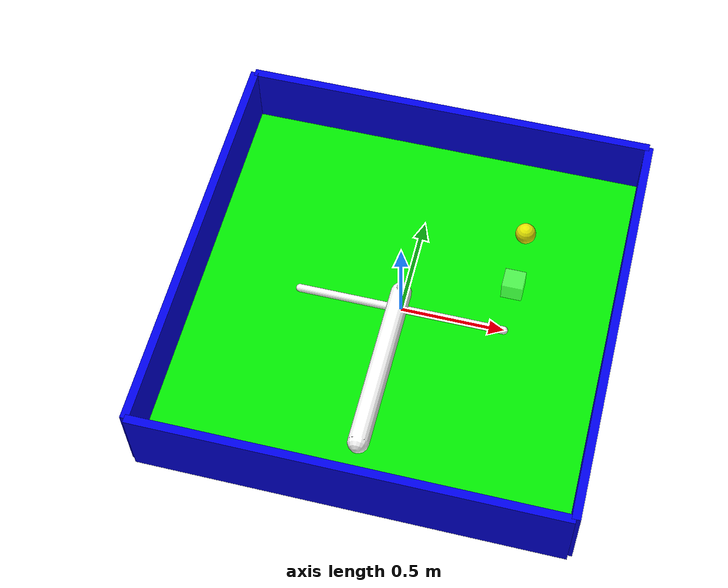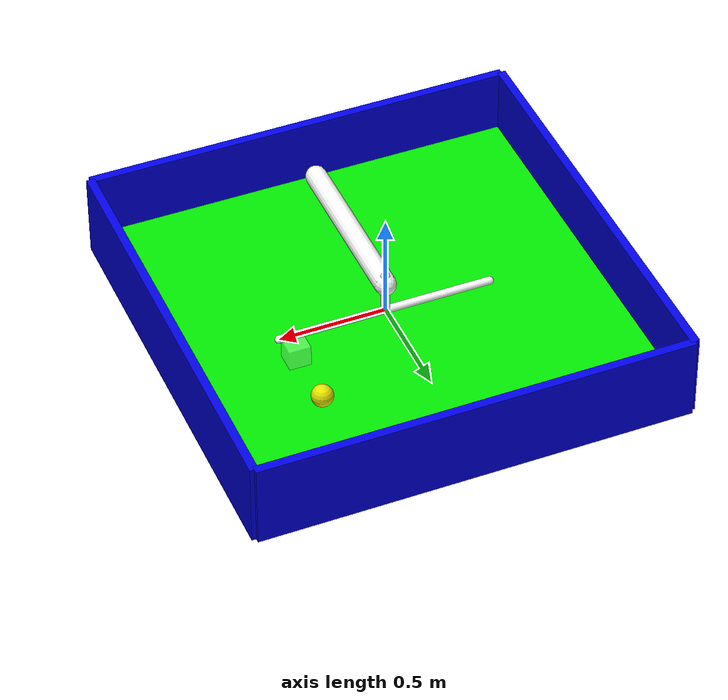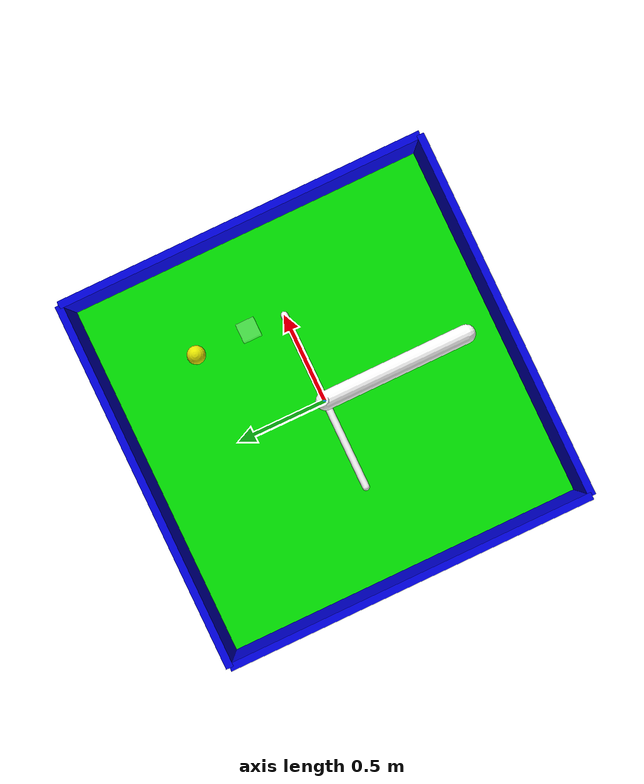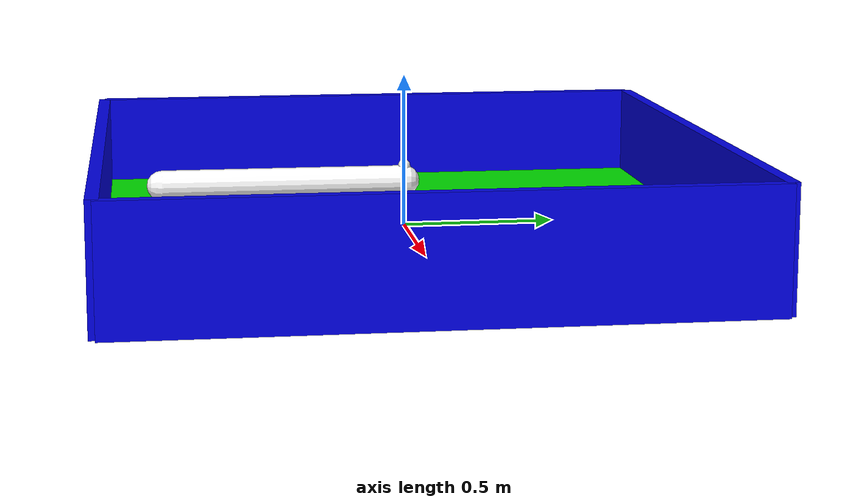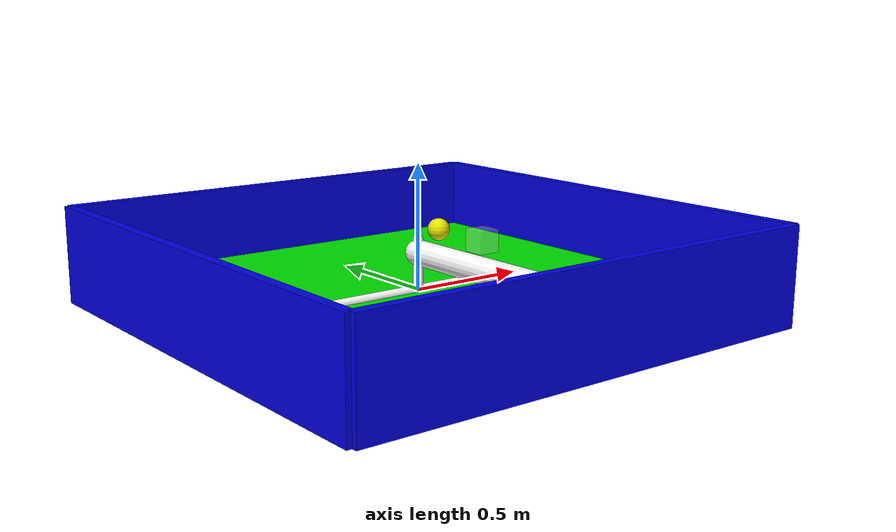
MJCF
<mujoco>
    <!-- Default settings for different tags of the model. -->
    <default>
        <joint pos="0 0 0" armature="0" damping="1" limited="true" />
        <geom rgba="1 1 1 1" contype="1" conaffinity="1" />
    </default>

    <!-- Definition of all geometric shapes and joints. -->
    <worldbody>
        <!-- Diffuse lighting at position (0,0,3) pointing downwards in z direction. -->
        <light diffuse=".7 .7 .7" pos="0 0 3" dir="0 0 -1" castshadow="false" />

        <!-- Plane centered at origin with color green and size 1*1 unit^2. -->
        <geom type="plane" size="1 1 1" pos="0 0 0" rgba="0 0.9 0 1" />

        <!-- Build walls around the plane -->
        <geom type="box" size="1 0.02 0.2" pos="0 1 0.1" rgba="0 0 0.9 1" />
        <geom type="box" size="1 0.02 0.2" pos="0 -1 0.1" rgba="0 0 0.9 1" />
        <geom type="box" size="0.02 1 0.2" pos="1 0 0.1" rgba="0 0 0.9 1" />
        <geom type="box" size="0.02 1 0.2" pos="-1 0 0.1" rgba="0 0 0.9 1" />

        <!-- Wrapper for the robot. Consists of a rail, a stick, and an arm. -->
        <body name="robot" pos="0 0 0">
            <!-- Rail centered at (0,0.8,0) with length 1 along x-axis that the robot body can slide on. -->
            <geom name="rail" type="capsule" fromto="-0.5 0 0 0.5 0 0" size="0.02 1" />

            <body name="cart" pos="0 0 0">
                <!-- Joint allowing sliding along x-axis with dx \in (-1,1). -->
                <joint name="slide_on_rail" type="slide" axis="1 0 0" range="-1 1" />

                <!-- Joint allowing rotation along z-axis with da \in (-180,180) deg. -->
                <joint name="rotate_on_stick" type="hinge" axis="0 0 1" range="-180 180" />

                <!-- Stick on the rail that the robot arm is attached to. -->
                <geom name="stick" type="capsule" fromto="0 0 0 0 0 0.2" size="0.02 0.2" />

                <!-- Wrapper for the robot arm. -->
                <body name="arm" pos="0 0 0.15">
                    <joint name="slide_on_stick" type="slide" axis="0 1 0" range="0 2" />
                    <geom type="capsule" fromto="0 0 0 0 -0.8 0" size="0.05 0.8" />
                </body>
            </body>
        </body>

        <!-- Ball for the robot to push. -->
        <body name="ball" pos="0.5 0.5 0.1">
            <geom type="sphere" size="0.05" rgba=".9 .9 0 1" conaffinity="0" />
            <joint name="ball_slide_x" type="slide" pos="0 0 0" axis="1 0 0" range="-10 10" damping="0.5" />
            <joint name="ball_slide_y" type="slide" pos="0 0 0" axis="0 1 0" range="-10 10" damping="0.5" />
        </body>

        <!-- Goal for the ball to be pushed to. -->
        <body name="goal" pos="0.5 0.2 0.1">
            <geom type="box" size="0.05 0.05 0.05" rgba="1 1 1 0.3" contype="0" conaffinity="0" />
            <joint name="goal_slide_x" type="slide" pos="0 0 0" axis="1 0 0" range="-10 10" damping="0.5" />
            <joint name="goal_slide_y" type="slide" pos="0 0 0" axis="0 1 0" range="-10 10" damping="0.5" />
        </body>
    </worldbody>

    <!-- Actuators that can be controlled by action vector. -->
    <actuator>
        <motor joint="slide_on_rail" ctrlrange="-2.0 2.0" ctrllimited="true" />
        <motor joint="rotate_on_stick" ctrlrange="-2.0 2.0" ctrllimited="true" />
        <motor joint="slide_on_stick" ctrlrange="-2.0 2.0" ctrllimited="true" />
    </actuator>
</mujoco>
